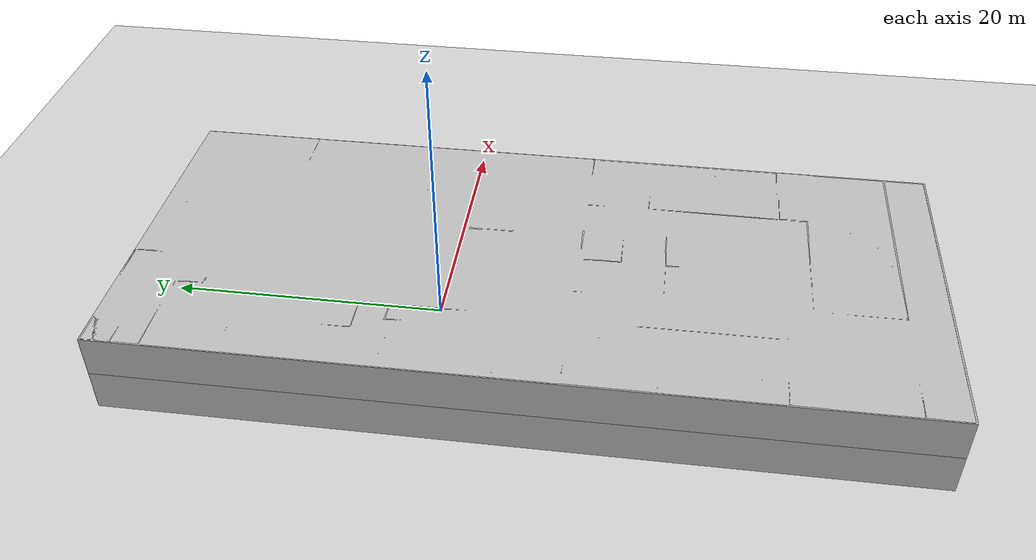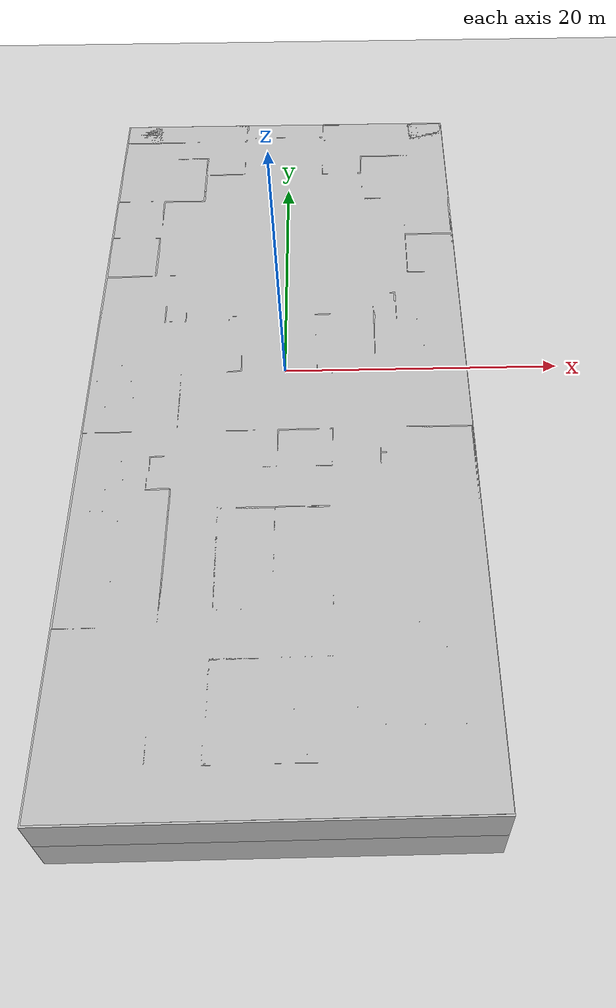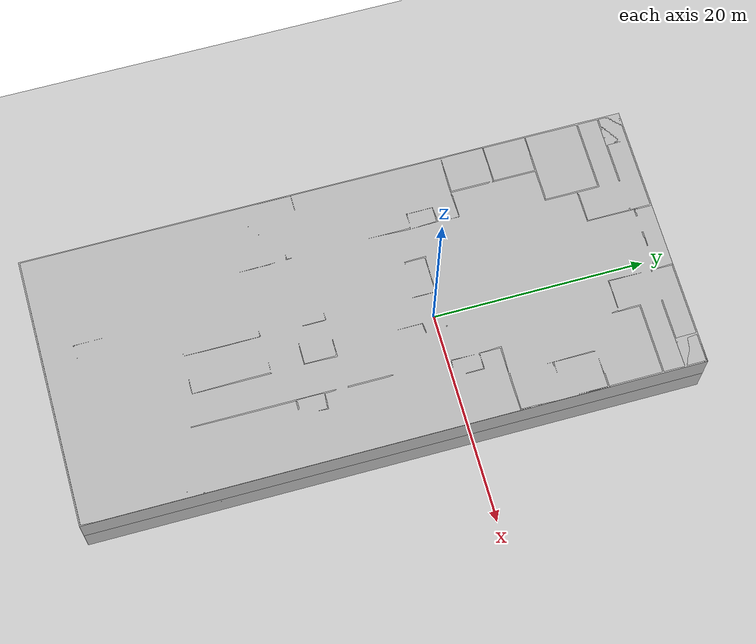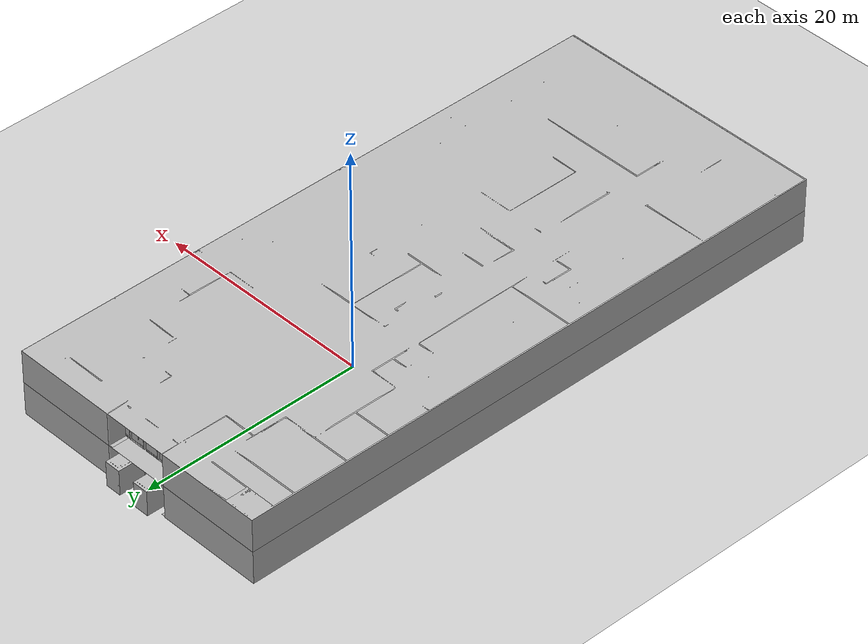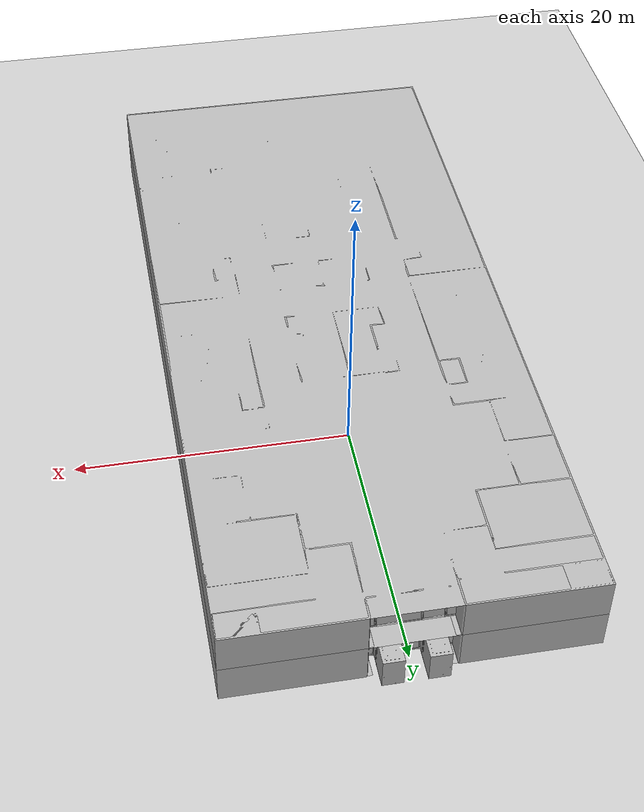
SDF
<sdf version="1.6">
 <world name="hospital_two_floors">
  <plugin filename="gz-sim-physics-system" name="gz::sim::systems::Physics"/>
  <plugin filename="gz-sim-sensors-system" name="gz::sim::systems::Sensors">
   <render_engine>ogre2</render_engine>
   <background_color>0.8 0.8 0.8</background_color>
  </plugin>
  <plugin filename="gz-sim-scene-broadcaster-system" name="gz::sim::systems::SceneBroadcaster"/>
  <plugin filename="gz-sim-user-commands-system" name="gz::sim::systems::UserCommands"/>
  <plugin filename="gz-sim-imu-system" name="gz::sim::systems::Imu"/>
  <scene><ambient>0.8 0.8 0.8 1</ambient><background>0.6 0.6 0.6 1</background><shadows>false</shadows></scene>
  <light name="sun" type="directional">
   <pose>0 0 10 0 0 0</pose>
   <diffuse>0.8 0.8 0.8 1</diffuse>
   <specular>0.2 0.2 0.2 1</specular>
   <attenuation>
    <range>1000</range>
    <constant>0.9</constant>
    <linear>0.01</linear>
    <quadratic>0.001</quadratic>
   </attenuation>
   <direction>0 0 -1</direction>
  </light>
  <model name="GroundPlane_1">
   <include><uri>model://Ground Plane</uri><static>true</static><pose>0 0 -0.1 0 0 0</pose></include>
  </model>
  <model name="aws_robomaker_hospital_floor_01_floor_1">
   <include>
    <uri>model://aws_robomaker_hospital_floor_01_floor</uri>
    <static>true</static>
    <pose>-0.001425 -0.014447 0 0 0 0</pose>
   </include>
  </model>
  <model name="aws_robomaker_hospital_floor_01_walls_1">
   <include>
    <uri>model://aws_robomaker_hospital_floor_01_walls</uri>
    <static>true</static>
    <pose>-0.013823 -0.013783 0 0 0 0</pose>
   </include>
  </model>
  <model name="aws_robomaker_hospital_nursesstation_01_1">
   <include>
    <uri>model://aws_robomaker_hospital_nursesstation_01</uri>
    <static>true</static>
    <pose>0 1.5 0 0 0 0</pose>
   </include>
  </model>
  <model name="aws_robomaker_hospital_elevator_01_portal_1">
   <include>
    <uri>model://aws_robomaker_hospital_elevator_01_portal</uri>
    <static>true</static>
    <pose>-1.50654 19.4813 0.19 0 0 0</pose>
   </include>
  </model>
  <model name="aws_robomaker_hospital_elevator_01_portal_2">
   <include>
    <uri>model://aws_robomaker_hospital_elevator_01_portal</uri>
    <static>true</static>
    <pose>1.51134 19.487 0.19 0 0 0</pose>
   </include>
  </model>
  <model name="aws_robomaker_hospital_elevator_01_car_1">
   <include>
    <uri>model://aws_robomaker_hospital_elevator_01_car</uri>
    <static>true</static>
    <pose>-1.49587 19.35 0.19 0 0 0</pose>
   </include>
  </model>
  <model name="aws_robomaker_hospital_elevator_01_car_2">
   <include>
    <uri>model://aws_robomaker_hospital_elevator_01_car</uri>
    <static>true</static>
    <pose>1.5407 19.35 0.19 0 0 0</pose>
   </include>
  </model>
  <model name="aws_robomaker_hospital_elevator_01_door_1">
   <include>
    <uri>model://aws_robomaker_hospital_elevator_01_door</uri>
    <static>true</static>
    <pose>-1.51 19.35 0.19 0 0 0</pose>
   </include>
  </model>
  <model name="aws_robomaker_hospital_elevator_01_door_2">
   <include>
    <uri>model://aws_robomaker_hospital_elevator_01_door</uri>
    <static>true</static>
    <pose>1.52843 19.3627 0.19 0 0 0</pose>
   </include>
  </model>
  <model name="aws_robomaker_hospital_curtain_half_open_01_1">
   <include>
    <uri>model://aws_robomaker_hospital_curtain_half_open_01</uri>
    <static>true</static>
    <pose>-11.0216 -13.8069 0 0 0 1.55358</pose>
   </include>
  </model>
  <model name="aws_robomaker_hospital_curtain_closed_01_1">
   <include>
    <uri>model://aws_robomaker_hospital_curtain_closed_01</uri>
    <static>true</static>
    <pose>-11.022 -7.27757 0 0 0 1.57907</pose>
   </include>
  </model>
  <model name="aws_robomaker_hospital_curtain_half_open_01_2">
   <include>
    <uri>model://aws_robomaker_hospital_curtain_half_open_01</uri>
    <static>true</static>
    <pose>11.1417 -21.4039 0 0 0 -1.55117</pose>
   </include>
  </model>
  <model name="aws_robomaker_hospital_curtain_half_open_01_3">
   <include>
    <uri>model://aws_robomaker_hospital_curtain_half_open_01</uri>
    <static>true</static>
    <pose>11.1068 -17.8472 0 0 0 -1.55117</pose>
   </include>
  </model>
  <model name="aws_robomaker_hospital_curtain_half_open_01_4">
   <include>
    <uri>model://aws_robomaker_hospital_curtain_half_open_01</uri>
    <static>true</static>
    <pose>11.1374 -14.1551 0 0 0 -1.55117</pose>
   </include>
  </model>
  <model name="aws_robomaker_hospital_curtain_half_open_01_5">
   <include>
    <uri>model://aws_robomaker_hospital_curtain_half_open_01</uri>
    <static>true</static>
    <pose>-11.0332 -17.61 0 0 0 1.55358</pose>
   </include>
  </model>
  <model name="aws_robomaker_hospital_curtain_half_open_01_6">
   <include>
    <uri>model://aws_robomaker_hospital_curtain_half_open_01</uri>
    <static>true</static>
    <pose>-11.0086 -21.7566 0 0 0 1.55358</pose>
   </include>
  </model>
  <model name="aws_robomaker_hospital_curtain_half_open_01_7">
   <include>
    <uri>model://aws_robomaker_hospital_curtain_half_open_01</uri>
    <static>true</static>
    <pose>-11.0426 0.066126 0 0 0 1.56614</pose>
   </include>
  </model>
  <model name="aws_robomaker_hospital_curtain_half_open_01_8">
   <include>
    <uri>model://aws_robomaker_hospital_curtain_half_open_01</uri>
    <static>true</static>
    <pose>-11.0309 -3.75145 0 0 0 1.56614</pose>
   </include>
  </model>
  <model name="aws_robomaker_hospital_floor_01_ceiling_1">
   <include>
    <uri>model://aws_robomaker_hospital_floor_01_ceiling</uri>
    <static>true</static>
    <pose>0.016552 0.050728 0 0 0 0</pose>
   </include>
  </model>
  <model name="aws_robomaker_hospital_ramp_01_1">
   <include>
    <uri>model://aws_robomaker_hospital_ramp_01</uri>
    <static>true</static>
    <pose>-1.70996 16.3685 0 0 0 0</pose>
   </include>
  </model>
  <model name="aws_robomaker_hospital_curtain_open_01_1">
   <include>
    <uri>model://aws_robomaker_hospital_curtain_open_01</uri>
    <static>true</static>
    <pose>11.0051 -6.91002 0 0 0 -1.58737</pose>
   </include>
  </model>
  <model name="aws_robomaker_hospital_curtain_closed_01_2">
   <include>
    <uri>model://aws_robomaker_hospital_curtain_closed_01</uri>
    <static>true</static>
    <pose>11.0303 -3.70124 0 0 0 -1.58306</pose>
   </include>
  </model>
  <model name="aws_robomaker_hospital_curtain_closed_01_3">
   <include>
    <uri>model://aws_robomaker_hospital_curtain_closed_01</uri>
    <static>true</static>
    <pose>10.9586 0.159483 0 0 0 -1.58306</pose>
   </include>
  </model>
  <model name="aws_robomaker_hospital_curtain_closed_01_4">
   <include>
    <uri>model://aws_robomaker_hospital_curtain_closed_01</uri>
    <static>true</static>
    <pose>10.9819 -26.2149 0 0 0 -1.58306</pose>
   </include>
  </model>
  <model name="aws_robomaker_hospital_curtain_closed_01_5">
   <include>
    <uri>model://aws_robomaker_hospital_curtain_closed_01</uri>
    <static>true</static>
    <pose>1.31506 -30.5771 0 0 0 3.1401</pose>
   </include>
  </model>
  <model name="aws_robomaker_hospital_curtain_closed_01_6">
   <include>
    <uri>model://aws_robomaker_hospital_curtain_closed_01</uri>
    <static>true</static>
    <pose>5.49659 -30.5364 0 0 0 3.1401</pose>
   </include>
  </model>
  <model name="aws_robomaker_hospital_curtain_closed_01_7">
   <include>
    <uri>model://aws_robomaker_hospital_curtain_closed_01</uri>
    <static>true</static>
    <pose>9.80048 -30.5918 0 0 0 3.1401</pose>
   </include>
  </model>
  <model name="floor_1_aws_robomaker_hospital_floor_01_floor_1">
   <include>
    <uri>model://aws_robomaker_hospital_floor_01_floor</uri>
    <static>true</static>
    <pose>-0.001425 -0.014447 3.0 0 0 0</pose>
   </include>
  </model>
  <model name="floor_1_aws_robomaker_hospital_floor_01_walls_1">
   <include>
    <uri>model://aws_robomaker_hospital_floor_01_walls</uri>
    <static>true</static>
    <pose>-0.013823 -0.013783 3.0 0 0 0</pose>
   </include>
  </model>
  <model name="floor_1_aws_robomaker_hospital_nursesstation_01_1">
   <include>
    <uri>model://aws_robomaker_hospital_nursesstation_01</uri>
    <static>true</static>
    <pose>0 1.5 3.0 0 0 0</pose>
   </include>
  </model>
  <model name="floor_1_aws_robomaker_hospital_elevator_01_portal_1">
   <include>
    <uri>model://aws_robomaker_hospital_elevator_01_portal</uri>
    <static>true</static>
    <pose>-1.50654 19.4813 3.19 0 0 0</pose>
   </include>
  </model>
  <model name="floor_1_aws_robomaker_hospital_elevator_01_portal_2">
   <include>
    <uri>model://aws_robomaker_hospital_elevator_01_portal</uri>
    <static>true</static>
    <pose>1.51134 19.487 3.19 0 0 0</pose>
   </include>
  </model>
  <model name="floor_1_aws_robomaker_hospital_elevator_01_door_1">
   <include>
    <uri>model://aws_robomaker_hospital_elevator_01_door</uri>
    <static>true</static>
    <pose>-1.51 19.35 3.19 0 0 0</pose>
   </include>
  </model>
  <model name="floor_1_aws_robomaker_hospital_elevator_01_door_2">
   <include>
    <uri>model://aws_robomaker_hospital_elevator_01_door</uri>
    <static>true</static>
    <pose>1.52843 19.3627 3.19 0 0 0</pose>
   </include>
  </model>
  <model name="floor_1_aws_robomaker_hospital_curtain_half_open_01_1">
   <include>
    <uri>model://aws_robomaker_hospital_curtain_half_open_01</uri>
    <static>true</static>
    <pose>-11.0216 -13.8069 3.0 0 0 1.55358</pose>
   </include>
  </model>
  <model name="floor_1_aws_robomaker_hospital_curtain_closed_01_1">
   <include>
    <uri>model://aws_robomaker_hospital_curtain_closed_01</uri>
    <static>true</static>
    <pose>-11.022 -7.27757 3.0 0 0 1.57907</pose>
   </include>
  </model>
  <model name="floor_1_aws_robomaker_hospital_curtain_half_open_01_2">
   <include>
    <uri>model://aws_robomaker_hospital_curtain_half_open_01</uri>
    <static>true</static>
    <pose>11.1417 -21.4039 3.0 0 0 -1.55117</pose>
   </include>
  </model>
  <model name="floor_1_aws_robomaker_hospital_curtain_half_open_01_3">
   <include>
    <uri>model://aws_robomaker_hospital_curtain_half_open_01</uri>
    <static>true</static>
    <pose>11.1068 -17.8472 3.0 0 0 -1.55117</pose>
   </include>
  </model>
  <model name="floor_1_aws_robomaker_hospital_curtain_half_open_01_4">
   <include>
    <uri>model://aws_robomaker_hospital_curtain_half_open_01</uri>
    <static>true</static>
    <pose>11.1374 -14.1551 3.0 0 0 -1.55117</pose>
   </include>
  </model>
  <model name="floor_1_aws_robomaker_hospital_curtain_half_open_01_5">
   <include>
    <uri>model://aws_robomaker_hospital_curtain_half_open_01</uri>
    <static>true</static>
    <pose>-11.0332 -17.61 3.0 0 0 1.55358</pose>
   </include>
  </model>
  <model name="floor_1_aws_robomaker_hospital_curtain_half_open_01_6">
   <include>
    <uri>model://aws_robomaker_hospital_curtain_half_open_01</uri>
    <static>true</static>
    <pose>-11.0086 -21.7566 3.0 0 0 1.55358</pose>
   </include>
  </model>
  <model name="floor_1_aws_robomaker_hospital_curtain_half_open_01_7">
   <include>
    <uri>model://aws_robomaker_hospital_curtain_half_open_01</uri>
    <static>true</static>
    <pose>-11.0426 0.066126 3.0 0 0 1.56614</pose>
   </include>
  </model>
  <model name="floor_1_aws_robomaker_hospital_curtain_half_open_01_8">
   <include>
    <uri>model://aws_robomaker_hospital_curtain_half_open_01</uri>
    <static>true</static>
    <pose>-11.0309 -3.75145 3.0 0 0 1.56614</pose>
   </include>
  </model>
  <model name="floor_1_aws_robomaker_hospital_floor_01_ceiling_1">
   <include>
    <uri>model://aws_robomaker_hospital_floor_01_ceiling</uri>
    <static>true</static>
    <pose>0.016552 0.050728 3.0 0 0 0</pose>
   </include>
  </model>
  <model name="floor_1_aws_robomaker_hospital_ramp_01_1">
   <include>
    <uri>model://aws_robomaker_hospital_ramp_01</uri>
    <static>true</static>
    <pose>-1.70996 16.3685 3.0 0 0 0</pose>
   </include>
  </model>
  <model name="floor_1_aws_robomaker_hospital_curtain_open_01_1">
   <include>
    <uri>model://aws_robomaker_hospital_curtain_open_01</uri>
    <static>true</static>
    <pose>11.0051 -6.91002 3.0 0 0 -1.58737</pose>
   </include>
  </model>
  <model name="floor_1_aws_robomaker_hospital_curtain_closed_01_2">
   <include>
    <uri>model://aws_robomaker_hospital_curtain_closed_01</uri>
    <static>true</static>
    <pose>11.0303 -3.70124 3.0 0 0 -1.58306</pose>
   </include>
  </model>
  <model name="floor_1_aws_robomaker_hospital_curtain_closed_01_3">
   <include>
    <uri>model://aws_robomaker_hospital_curtain_closed_01</uri>
    <static>true</static>
    <pose>10.9586 0.159483 3.0 0 0 -1.58306</pose>
   </include>
  </model>
  <model name="floor_1_aws_robomaker_hospital_curtain_closed_01_4">
   <include>
    <uri>model://aws_robomaker_hospital_curtain_closed_01</uri>
    <static>true</static>
    <pose>10.9819 -26.2149 3.0 0 0 -1.58306</pose>
   </include>
  </model>
  <model name="floor_1_aws_robomaker_hospital_curtain_closed_01_5">
   <include>
    <uri>model://aws_robomaker_hospital_curtain_closed_01</uri>
    <static>true</static>
    <pose>1.31506 -30.5771 3.0 0 0 3.1401</pose>
   </include>
  </model>
  <model name="floor_1_aws_robomaker_hospital_curtain_closed_01_6">
   <include>
    <uri>model://aws_robomaker_hospital_curtain_closed_01</uri>
    <static>true</static>
    <pose>5.49659 -30.5364 3.0 0 0 3.1401</pose>
   </include>
  </model>
  <model name="floor_1_aws_robomaker_hospital_curtain_closed_01_7">
   <include>
    <uri>model://aws_robomaker_hospital_curtain_closed_01</uri>
    <static>true</static>
    <pose>9.80048 -30.5918 3.0 0 0 3.1401</pose>
   </include>
  </model>
 </world>
</sdf>

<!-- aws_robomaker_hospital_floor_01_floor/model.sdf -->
<sdf version="1.6">
  <model name="aws_robomaker_hospital_floor_01_floor">
    <link name="link">
      <visual name="visual">
        <geometry>
          <mesh>
            <uri>model://aws_robomaker_hospital_floor_01_floor/meshes/aws_robomaker_hospital_floor_01_floor_visual.dae</uri>
          </mesh>
        </geometry>
      </visual>
      <collision name="collision">
        <geometry>
          <mesh>
            <uri>model://aws_robomaker_hospital_floor_01_floor/meshes/aws_robomaker_hospital_floor_01_floor_collision.dae</uri>
          </mesh>
        </geometry>
        <surface>
          <friction>
            <ode>
              <mu>100</mu>
              <mu2>50</mu2>
            </ode>
          </friction>
        </surface>
      </collision>
    </link>
    <static>1</static>
  </model>
</sdf>

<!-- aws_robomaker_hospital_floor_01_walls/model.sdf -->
<sdf version="1.6">
  <model name="aws_robomaker_hospital_floor_01_walls">
    <link name="link">
      <visual name="visual">
        <geometry>
          <mesh>
            <uri>model://aws_robomaker_hospital_floor_01_walls/meshes/aws_robomaker_hospital_floor_01_walls_visual.dae</uri>
          </mesh>
        </geometry>
      </visual>
      <collision name="collision">
        <geometry>
          <mesh>
            <uri>model://aws_robomaker_hospital_floor_01_walls/meshes/aws_robomaker_hospital_floor_01_walls_collision.dae</uri>
          </mesh>
        </geometry>
      </collision>
    </link>
    <static>1</static>
  </model>
</sdf>

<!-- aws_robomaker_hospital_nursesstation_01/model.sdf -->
<sdf version="1.6">
  <model name="aws_robomaker_hospital_nursesstation_01">
    <link name="link">
      <visual name="visual">
        <geometry>
          <mesh>
            <uri>model://aws_robomaker_hospital_nursesstation_01/meshes/aws_robomaker_hospital_nursesstation_01_visual.dae</uri>
          </mesh>
        </geometry>
      </visual>
      <collision name="collision">
        <geometry>
          <mesh>
            <uri>model://aws_robomaker_hospital_nursesstation_01/meshes/aws_robomaker_hospital_nursesstation_01_collision.dae</uri>
          </mesh>
        </geometry>
      </collision>
    </link>
    <static>1</static>
  </model>
</sdf>

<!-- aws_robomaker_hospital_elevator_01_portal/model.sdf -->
<sdf version="1.6">
  <model name="aws_robomaker_hospital_elevator_01_portal">
    <link name="link">
      <visual name="visual">
        <geometry>
          <mesh>
            <uri>model://aws_robomaker_hospital_elevator_01_portal/meshes/aws_robomaker_hospital_elevator_01_portal_visual.dae</uri>
          </mesh>
        </geometry>
      </visual>
      <collision name="collision">
        <geometry>
          <mesh>
            <uri>model://aws_robomaker_hospital_elevator_01_portal/meshes/aws_robomaker_hospital_elevator_01_portal_collision.dae</uri>
          </mesh>
        </geometry>
      </collision>
    </link>
    <static>1</static>
  </model>
</sdf>

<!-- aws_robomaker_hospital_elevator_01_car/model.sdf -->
<sdf version="1.6">
  <model name="aws_robomaker_hospital_elevator_01_car">
    <link name="link">
      <visual name="visual">
        <geometry>
          <mesh>
            <uri>model://aws_robomaker_hospital_elevator_01_car/meshes/aws_robomaker_hospital_elevator_01_car_visual.dae</uri>
          </mesh>
        </geometry>
      </visual>
      <collision name="collision">
        <geometry>
          <mesh>
            <uri>model://aws_robomaker_hospital_elevator_01_car/meshes/aws_robomaker_hospital_elevator_01_car_collision.dae</uri>
          </mesh>
        </geometry>
      </collision>
    </link>
    <static>1</static>
  </model>
</sdf>

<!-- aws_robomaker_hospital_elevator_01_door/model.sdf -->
<sdf version="1.6">
  <model name="aws_robomaker_hospital_elevator_01_door">
    <link name="link">
      <visual name="visual">
        <geometry>
          <mesh>
            <uri>model://aws_robomaker_hospital_elevator_01_door/meshes/aws_robomaker_hospital_elevator_01_door_visual.dae</uri>
          </mesh>
        </geometry>
      </visual>
      <collision name="collision">
        <geometry>
          <mesh>
            <uri>model://aws_robomaker_hospital_elevator_01_door/meshes/aws_robomaker_hospital_elevator_01_door_collision.dae</uri>
          </mesh>
        </geometry>
      </collision>
    </link>
    <static>1</static>
  </model>
</sdf>

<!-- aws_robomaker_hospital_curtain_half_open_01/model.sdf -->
<sdf version="1.6">
  <model name="aws_robomaker_hospital_curtain_half_open_01">
    <link name="link">
      <visual name="visual">
        <geometry>
          <mesh>
            <uri>model://aws_robomaker_hospital_curtain_half_open_01/meshes/aws_robomaker_hospital_curtain_half_open_01_visual.dae</uri>
          </mesh>
        </geometry>
      </visual>
      <collision name="collision">
        <geometry>
          <mesh>
            <uri>model://aws_robomaker_hospital_curtain_half_open_01/meshes/aws_robomaker_hospital_curtain_half_open_01_collision.dae</uri>
          </mesh>
        </geometry>
      </collision>
    </link>
    <static>1</static>
  </model>
</sdf>

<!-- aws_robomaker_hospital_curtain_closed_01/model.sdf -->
<sdf version="1.6">
  <model name="aws_robomaker_hospital_curtain_closed_01">
    <link name="link">
      <visual name="visual">
        <geometry>
          <mesh>
            <uri>model://aws_robomaker_hospital_curtain_closed_01/meshes/aws_robomaker_hospital_curtain_closed_01_visual.dae</uri>
          </mesh>
        </geometry>
      </visual>
      <collision name="collision">
        <geometry>
          <mesh>
            <uri>model://aws_robomaker_hospital_curtain_closed_01/meshes/aws_robomaker_hospital_curtain_closed_01_collision.dae</uri>
          </mesh>
        </geometry>
      </collision>
    </link>
    <static>1</static>
  </model>
</sdf>

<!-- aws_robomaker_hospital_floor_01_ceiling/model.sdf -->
<sdf version="1.6">
  <model name="aws_robomaker_hospital_floor_01_ceiling">
    <link name="link">
      <visual name="visual">
        <geometry>
          <mesh>
            <uri>model://aws_robomaker_hospital_floor_01_ceiling/meshes/aws_robomaker_hospital_floor_01_ceiling_visual.dae</uri>
          </mesh>
        </geometry>
      </visual>
      <collision name="collision">
        <geometry>
          <mesh>
            <uri>model://aws_robomaker_hospital_floor_01_ceiling/meshes/aws_robomaker_hospital_floor_01_ceiling_collision.dae</uri>
          </mesh>
        </geometry>
      </collision>
    </link>
    <static>1</static>
  </model>
</sdf>

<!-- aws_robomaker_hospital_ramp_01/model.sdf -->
<sdf version="1.6">
  <model name="aws_robomaker_hospital_ramp_01">
    <link name="link">
      <visual name="visual">
        <geometry>
          <mesh>
            <uri>model://aws_robomaker_hospital_ramp_01/meshes/aws_robomaker_hospital_ramp_01_visual.dae</uri>
          </mesh>
        </geometry>
      </visual>
      <collision name="collision">
        <geometry>
          <mesh>
            <uri>model://aws_robomaker_hospital_ramp_01/meshes/aws_robomaker_hospital_ramp_01_collision.dae</uri>
          </mesh>
        </geometry>
      </collision>
    </link>
    <static>1</static>
  </model>
</sdf>

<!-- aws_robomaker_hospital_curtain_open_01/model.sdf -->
<sdf version="1.6">
  <model name="aws_robomaker_hospital_curtain_open_01">
    <link name="link">
      <visual name="visual">
        <geometry>
          <mesh>
            <uri>model://aws_robomaker_hospital_curtain_open_01/meshes/aws_robomaker_hospital_curtain_open_01_visual.dae</uri>
          </mesh>
        </geometry>
      </visual>
      <collision name="collision">
        <geometry>
          <mesh>
            <uri>model://aws_robomaker_hospital_curtain_open_01/meshes/aws_robomaker_hospital_curtain_open_01_collision.dae</uri>
          </mesh>
        </geometry>
      </collision>
    </link>
    <static>1</static>
  </model>
</sdf>
